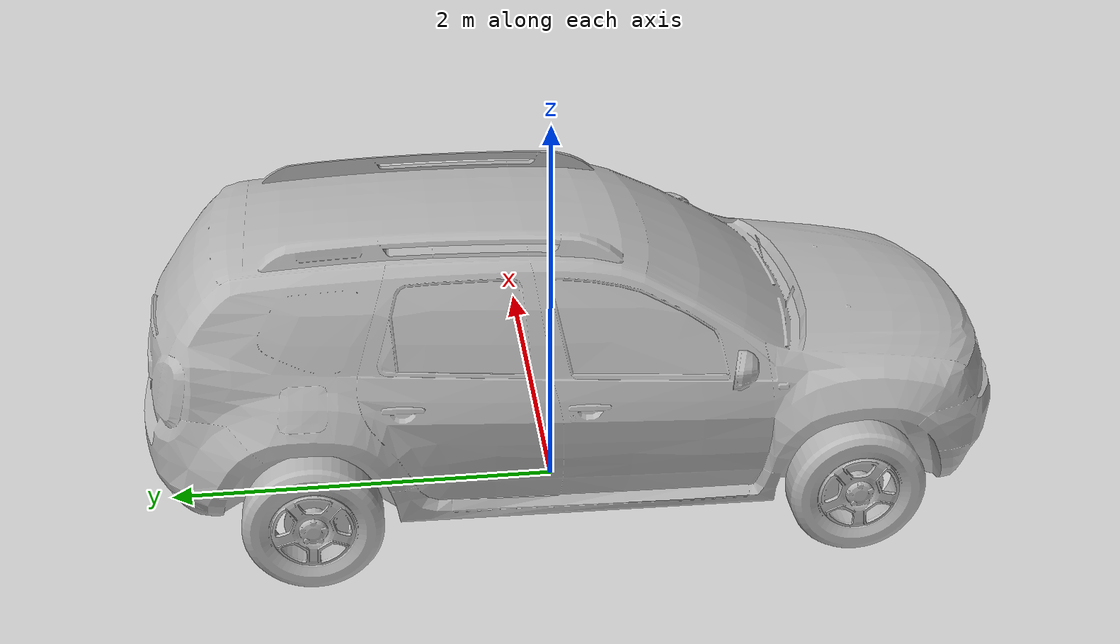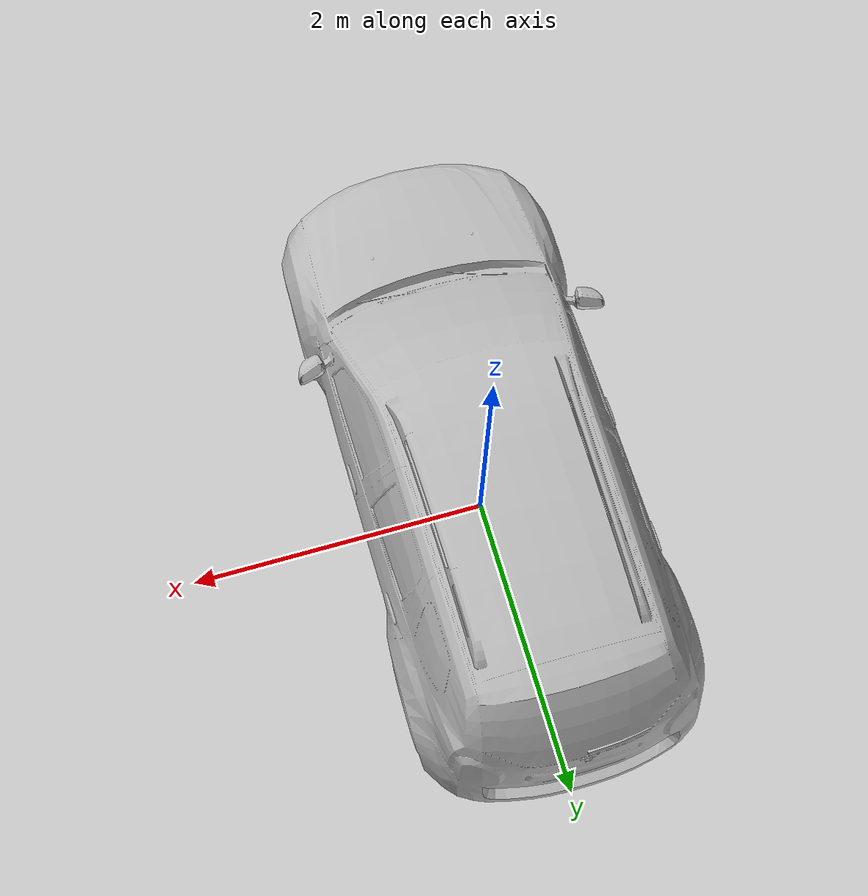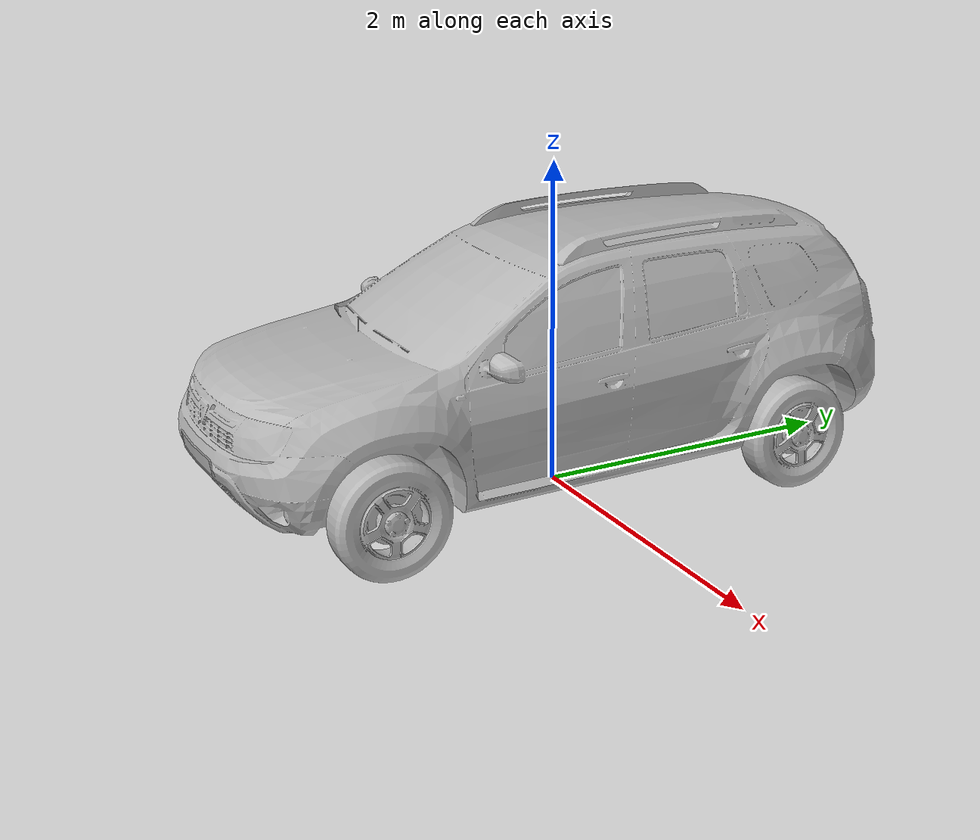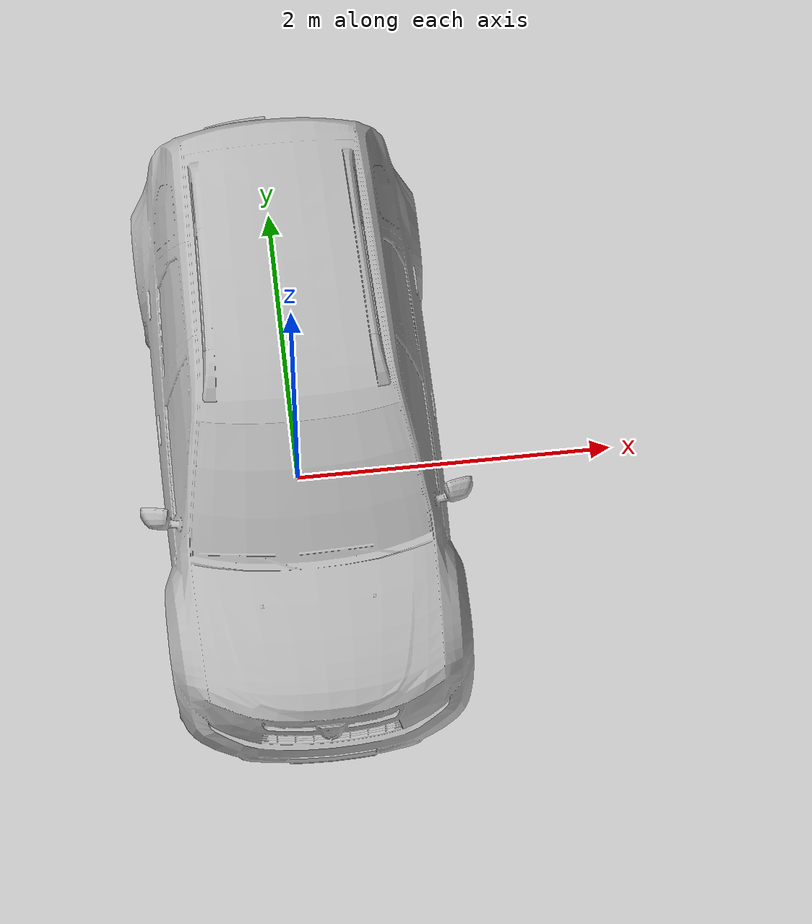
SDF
<?xml version="1.0" ?>
<sdf version="1.5">
  <model name="Duster">
    <static>true</static>
    <link name="link">
      <collision name="collision">
        <geometry>
            <mesh>
                <uri>model://duster/meshes/duster.stl</uri>
                <scale>1 1 1</scale>
            </mesh>
        </geometry>
      </collision>
      <visual name="visual">
        <geometry>
          <mesh>
            <uri>model://duster/meshes/duster.stl</uri>
            <scale>1 1 1</scale>
          </mesh>
        </geometry>
      </visual>
    </link>
    <gazebo reference="link">
      <material>Gazebo/White</material>
    </gazebo>
  </model>
</sdf>
